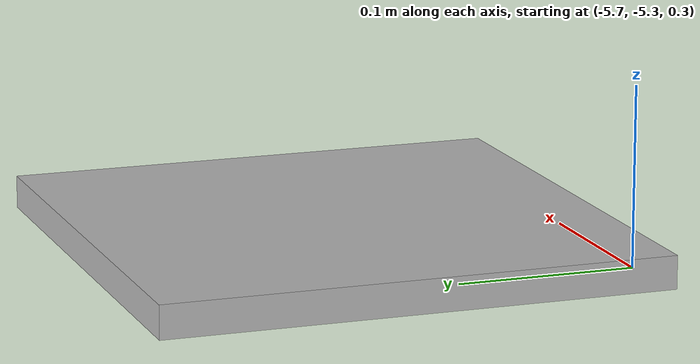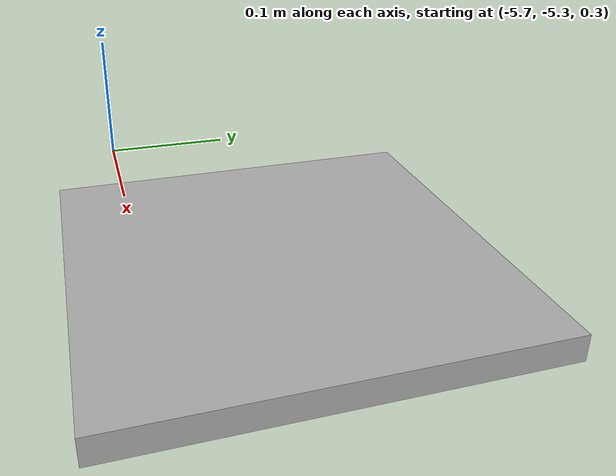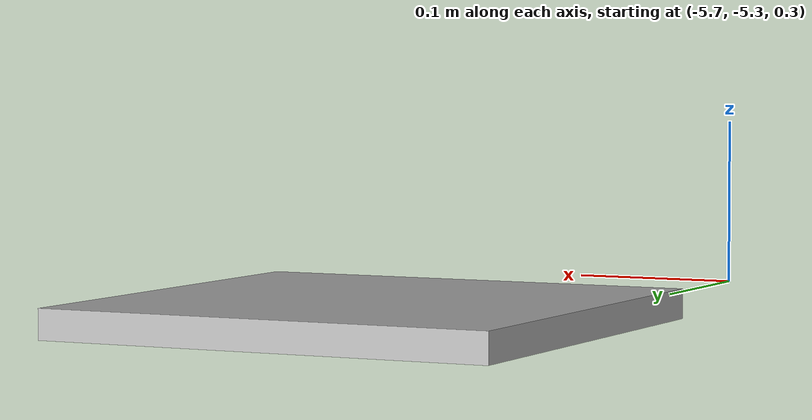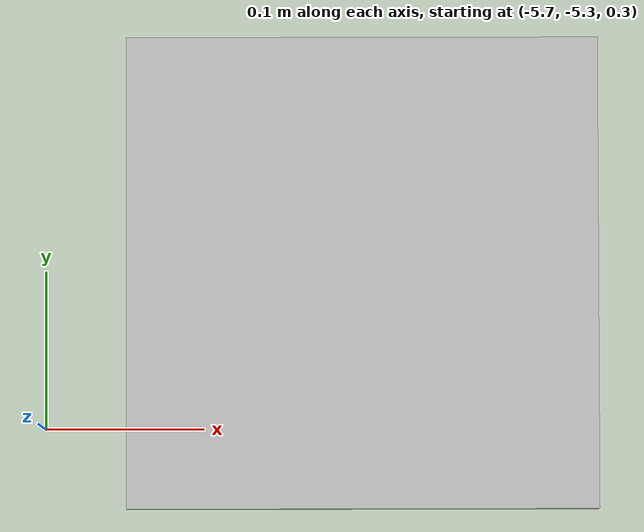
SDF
<?xml version="1.0"?>
<sdf version="1.5">
    <model name="6qr">
        <static>true</static>
        <link name="link">

             <collision name="collision6">
                <pose>-5.5 -5.2 0.27 0 0 0</pose>
                <geometry>
                    <mesh>
                        <uri>model://6qr/meshes/qr.stl</uri>
                    </mesh>
                </geometry>
            </collision>
            <visual name="visual6">

              <pose>-5.5 -5.2 0.27 0 0 0</pose>
              <geometry>
              <mesh>
                 <uri>model://qr_1/meshes/qr15.dae</uri>
              </mesh>
              </geometry>

              <material>
                  <script>
                      <uri>model://6qr/materials/scripts</uri>
                      <uri>model://6qr/materials/textures</uri>
                      <name>qrMat/Diffuse</name>
                  </script>
              </material>
             </visual>

        </link>
    </model>
</sdf>
